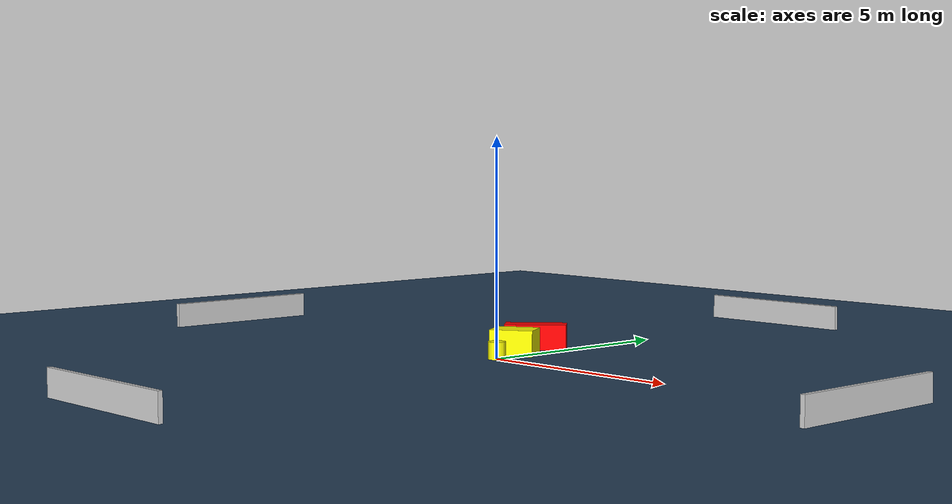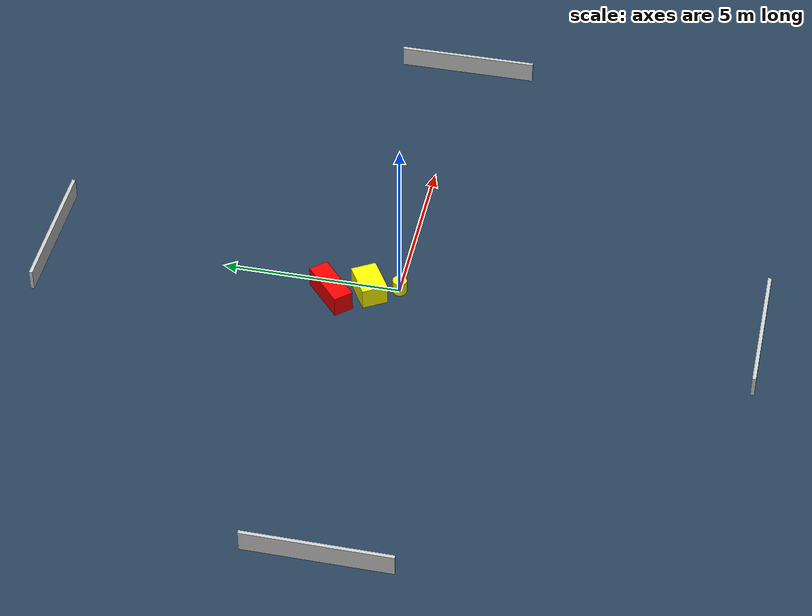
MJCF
<?xml version="1.0" ?>
<mujoco model="generated_environment">
  <option timestep="0.01" integrator="RK4" cone="elliptic"/>
  <default>
    <geom density="1"/>
  </default>
  <asset>
    <texture builtin="gradient" height="3072" name="skybox" rgb1="0.3 0.5 0.7" rgb2="0 0 0" type="skybox" width="512"/>
    <texture builtin="checker" height="300" name="groundplane" rgb1="0.2 0.3 0.4" rgb2="0.1 0.2 0.3" type="2d" width="300"/>
    <material name="groundplane" reflectance="0.2" texrepeat="5 5" texture="groundplane"/>
  </asset>
  <worldbody>
    <light dir="0 0 -1" directional="true" pos="0 0 1.5"/>
    <geom condim="3" friction="0.5 0.005 0.001" material="groundplane" name="floor" pos="0 0 0" size="0 0 0.05" type="plane"/>
    <body name="walls">
      <geom name="wall_1" condim="4" pos="-10.0 0.0 0.3" rgba="0.800000011920929 0.800000011920929 0.800000011920929 1.0" size="0.05 2.0 0.3" type="box"/>
      <geom name="wall_2" condim="4" pos="10.0 0.0 0.3" rgba="0.800000011920929 0.800000011920929 0.800000011920929 1.0" size="0.05 2.0 0.3" type="box"/>
      <geom name="wall_3" condim="4" pos="0.0 -10.0 0.3" rgba="0.800000011920929 0.800000011920929 0.800000011920929 1.0" size="2.0 0.05 0.3" type="box"/>
      <geom name="wall_4" condim="4" pos="0.0 10.0 0.3" rgba="0.800000011920929 0.800000011920929 0.800000011920929 1.0" size="2.0 0.05 0.3" type="box"/>
    </body>
    <body name="robot">
      <joint name="joint_x" type="slide" pos="0 0 0" axis="1 0 0"/>
      <joint name="joint_y" type="slide" pos="0 0 0" axis="0 1 0"/>
      <geom name="robot" type="cylinder" pos="0.0 0.0 0.2" size="0.2 0.2 0.0" mass="5.0" friction="1.0 0.005 0.0001" condim="4" rgba="1.0 1.0 0.0 1.0"/>
    </body>
    <body name="obstacle_1_movable">
      <geom name="obstacle_1_movable" condim="4" pos="-0.2613681385162549 0.811109842596443 0.3" euler="0 0 300.9797071702326" friction="0.0 0.005 0.001" rgba="1.0 1.0 0.0 1.0" size="0.36105068691612213 0.5049853137160252 0.3" type="box" mass="0.1"/>
      <joint type="free"/>
    </body>
    <body name="obstacle_2_static">
      <geom name="obstacle_2_static" condim="4" pos="-0.6050428099690981 1.8140949151055945 0.3" euler="0 0 311.67938308915916" friction="0.0 0.005 0.001" rgba="1.0 0.0 0.0 1.0" size="0.2784706573806147 0.7246481952721231 0.3" type="box"/>
    </body>
  </worldbody>
  <actuator>
    <motor name="actuator_x" joint="joint_x" gear="1" ctrlrange="-1 1"/>
    <motor name="actuator_y" joint="joint_y" gear="1" ctrlrange="-1 1"/>
  </actuator>
</mujoco>
